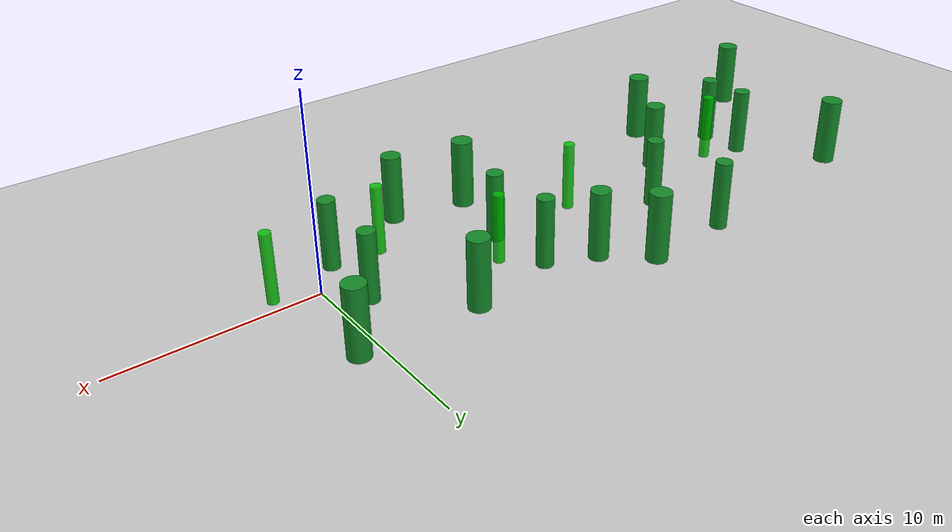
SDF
<sdf version="1.6">
 <world name="long_cylinder_forest">
  <include><uri>model://sun</uri></include>
  <include><uri>model://ground_plane</uri></include>
  <model name="long_forest_cylinder_00">
   <static>true</static>
   <pose>-26.090 1.580 1.800 0 0 0</pose>
   <link name="link">
    <collision name="collision">
     <geometry><cylinder><radius>0.430</radius><length>3.600</length></cylinder></geometry>
    </collision>
    <visual name="visual">
     <geometry><cylinder><radius>0.430</radius><length>3.600</length></cylinder></geometry>
     <material><ambient>0.08 0.55 0.16 0.92</ambient><diffuse>0.08 0.55 0.16 0.92</diffuse></material>
    </visual>
   </link>
  </model>
  <model name="long_forest_cylinder_01">
   <static>true</static>
   <pose>-25.940 -0.650 1.800 0 0 0</pose>
   <link name="link">
    <collision name="collision">
     <geometry><cylinder><radius>0.430</radius><length>3.600</length></cylinder></geometry>
    </collision>
    <visual name="visual">
     <geometry><cylinder><radius>0.430</radius><length>3.600</length></cylinder></geometry>
     <material><ambient>0.08 0.55 0.16 0.92</ambient><diffuse>0.08 0.55 0.16 0.92</diffuse></material>
    </visual>
   </link>
  </model>
  <model name="long_forest_cylinder_02">
   <static>true</static>
   <pose>-18.650 6.900 1.800 0 0 0</pose>
   <link name="link">
    <collision name="collision">
     <geometry><cylinder><radius>0.430</radius><length>3.600</length></cylinder></geometry>
    </collision>
    <visual name="visual">
     <geometry><cylinder><radius>0.430</radius><length>3.600</length></cylinder></geometry>
     <material><ambient>0.08 0.55 0.16 0.92</ambient><diffuse>0.08 0.55 0.16 0.92</diffuse></material>
    </visual>
   </link>
  </model>
  <model name="long_forest_cylinder_03">
   <static>true</static>
   <pose>-17.750 3.130 1.800 0 0 0</pose>
   <link name="link">
    <collision name="collision">
     <geometry><cylinder><radius>0.430</radius><length>3.600</length></cylinder></geometry>
    </collision>
    <visual name="visual">
     <geometry><cylinder><radius>0.430</radius><length>3.600</length></cylinder></geometry>
     <material><ambient>0.08 0.55 0.16 0.92</ambient><diffuse>0.08 0.55 0.16 0.92</diffuse></material>
    </visual>
   </link>
  </model>
  <model name="long_forest_cylinder_04">
   <static>true</static>
   <pose>-9.500 4.290 1.800 0 0 0</pose>
   <link name="link">
    <collision name="collision">
     <geometry><cylinder><radius>0.430</radius><length>3.600</length></cylinder></geometry>
    </collision>
    <visual name="visual">
     <geometry><cylinder><radius>0.430</radius><length>3.600</length></cylinder></geometry>
     <material><ambient>0.08 0.55 0.16 0.92</ambient><diffuse>0.08 0.55 0.16 0.92</diffuse></material>
    </visual>
   </link>
  </model>
  <model name="long_forest_cylinder_05">
   <static>true</static>
   <pose>-9.150 0.900 1.800 0 0 0</pose>
   <link name="link">
    <collision name="collision">
     <geometry><cylinder><radius>0.430</radius><length>3.600</length></cylinder></geometry>
    </collision>
    <visual name="visual">
     <geometry><cylinder><radius>0.430</radius><length>3.600</length></cylinder></geometry>
     <material><ambient>0.08 0.55 0.16 0.92</ambient><diffuse>0.08 0.55 0.16 0.92</diffuse></material>
    </visual>
   </link>
  </model>
  <model name="long_forest_cylinder_06">
   <static>true</static>
   <pose>-1.510 1.770 1.800 0 0 0</pose>
   <link name="link">
    <collision name="collision">
     <geometry><cylinder><radius>0.430</radius><length>3.600</length></cylinder></geometry>
    </collision>
    <visual name="visual">
     <geometry><cylinder><radius>0.430</radius><length>3.600</length></cylinder></geometry>
     <material><ambient>0.08 0.55 0.16 0.92</ambient><diffuse>0.08 0.55 0.16 0.92</diffuse></material>
    </visual>
   </link>
  </model>
  <model name="long_forest_cylinder_07">
   <static>true</static>
   <pose>-1.510 -1.750 1.800 0 0 0</pose>
   <link name="link">
    <collision name="collision">
     <geometry><cylinder><radius>0.430</radius><length>3.600</length></cylinder></geometry>
    </collision>
    <visual name="visual">
     <geometry><cylinder><radius>0.430</radius><length>3.600</length></cylinder></geometry>
     <material><ambient>0.08 0.55 0.16 0.92</ambient><diffuse>0.08 0.55 0.16 0.92</diffuse></material>
    </visual>
   </link>
  </model>
  <model name="long_forest_cylinder_16">
   <static>true</static>
   <pose>-20.850 0.000 1.800 0 0 0</pose>
   <link name="link">
    <collision name="collision">
     <geometry><cylinder><radius>0.500</radius><length>3.600</length></cylinder></geometry>
    </collision>
    <visual name="visual">
     <geometry><cylinder><radius>0.500</radius><length>3.600</length></cylinder></geometry>
     <material><ambient>0.08 0.55 0.16 0.92</ambient><diffuse>0.08 0.55 0.16 0.92</diffuse></material>
    </visual>
   </link>
  </model>
  <model name="long_forest_cylinder_17">
   <static>true</static>
   <pose>-11.950 5.340 1.800 0 0 0</pose>
   <link name="link">
    <collision name="collision">
     <geometry><cylinder><radius>0.500</radius><length>3.600</length></cylinder></geometry>
    </collision>
    <visual name="visual">
     <geometry><cylinder><radius>0.500</radius><length>3.600</length></cylinder></geometry>
     <material><ambient>0.08 0.55 0.16 0.92</ambient><diffuse>0.08 0.55 0.16 0.92</diffuse></material>
    </visual>
   </link>
  </model>
  <model name="long_forest_cylinder_18">
   <static>true</static>
   <pose>-6.230 -3.750 1.800 0 0 0</pose>
   <link name="link">
    <collision name="collision">
     <geometry><cylinder><radius>0.500</radius><length>3.600</length></cylinder></geometry>
    </collision>
    <visual name="visual">
     <geometry><cylinder><radius>0.500</radius><length>3.600</length></cylinder></geometry>
     <material><ambient>0.08 0.55 0.16 0.92</ambient><diffuse>0.08 0.55 0.16 0.92</diffuse></material>
    </visual>
   </link>
  </model>
  <model name="long_forest_cylinder_24">
   <static>true</static>
   <pose>-31.000 -3.800 1.800 0 0 0</pose>
   <link name="link">
    <collision name="collision">
     <geometry><cylinder><radius>0.550</radius><length>3.600</length></cylinder></geometry>
    </collision>
    <visual name="visual">
     <geometry><cylinder><radius>0.550</radius><length>3.600</length></cylinder></geometry>
     <material><ambient>0.08 0.55 0.16 0.92</ambient><diffuse>0.08 0.55 0.16 0.92</diffuse></material>
    </visual>
   </link>
  </model>
  <model name="long_forest_cylinder_25">
   <static>true</static>
   <pose>-29.000 5.500 1.800 0 0 0</pose>
   <link name="link">
    <collision name="collision">
     <geometry><cylinder><radius>0.550</radius><length>3.600</length></cylinder></geometry>
    </collision>
    <visual name="visual">
     <geometry><cylinder><radius>0.550</radius><length>3.600</length></cylinder></geometry>
     <material><ambient>0.08 0.55 0.16 0.92</ambient><diffuse>0.08 0.55 0.16 0.92</diffuse></material>
    </visual>
   </link>
  </model>
  <model name="long_forest_cylinder_26">
   <static>true</static>
   <pose>-23.000 -3.500 1.800 0 0 0</pose>
   <link name="link">
    <collision name="collision">
     <geometry><cylinder><radius>0.550</radius><length>3.600</length></cylinder></geometry>
    </collision>
    <visual name="visual">
     <geometry><cylinder><radius>0.550</radius><length>3.600</length></cylinder></geometry>
     <material><ambient>0.08 0.55 0.16 0.92</ambient><diffuse>0.08 0.55 0.16 0.92</diffuse></material>
    </visual>
   </link>
  </model>
  <model name="long_forest_cylinder_27">
   <static>true</static>
   <pose>-14.000 7.200 1.800 0 0 0</pose>
   <link name="link">
    <collision name="collision">
     <geometry><cylinder><radius>0.550</radius><length>3.600</length></cylinder></geometry>
    </collision>
    <visual name="visual">
     <geometry><cylinder><radius>0.550</radius><length>3.600</length></cylinder></geometry>
     <material><ambient>0.08 0.55 0.16 0.92</ambient><diffuse>0.08 0.55 0.16 0.92</diffuse></material>
    </visual>
   </link>
  </model>
  <model name="long_forest_cylinder_28">
   <static>true</static>
   <pose>-10.000 -3.000 1.800 0 0 0</pose>
   <link name="link">
    <collision name="collision">
     <geometry><cylinder><radius>0.550</radius><length>3.600</length></cylinder></geometry>
    </collision>
    <visual name="visual">
     <geometry><cylinder><radius>0.550</radius><length>3.600</length></cylinder></geometry>
     <material><ambient>0.08 0.55 0.16 0.92</ambient><diffuse>0.08 0.55 0.16 0.92</diffuse></material>
    </visual>
   </link>
  </model>
  <model name="long_forest_cylinder_29">
   <static>true</static>
   <pose>-5.000 5.200 1.800 0 0 0</pose>
   <link name="link">
    <collision name="collision">
     <geometry><cylinder><radius>0.550</radius><length>3.600</length></cylinder></geometry>
    </collision>
    <visual name="visual">
     <geometry><cylinder><radius>0.550</radius><length>3.600</length></cylinder></geometry>
     <material><ambient>0.08 0.55 0.16 0.92</ambient><diffuse>0.08 0.55 0.16 0.92</diffuse></material>
    </visual>
   </link>
  </model>
  <model name="long_forest_cylinder_30">
   <static>true</static>
   <pose>1.000 5.000 1.800 0 0 0</pose>
   <link name="link">
    <collision name="collision">
     <geometry><cylinder><radius>0.550</radius><length>3.600</length></cylinder></geometry>
    </collision>
    <visual name="visual">
     <geometry><cylinder><radius>0.550</radius><length>3.600</length></cylinder></geometry>
     <material><ambient>0.08 0.55 0.16 0.92</ambient><diffuse>0.08 0.55 0.16 0.92</diffuse></material>
    </visual>
   </link>
  </model>
  <model name="long_forest_moving_0">
   <static>false</static>
   <pose>-8.000 2.700 1.800 0 0 0</pose>
   <link name="link">
    <gravity>false</gravity>
    <inertial>
     <mass>1.0</mass>
     <inertia><ixx>0.1</ixx><ixy>0.0</ixy><ixz>0.0</ixz><iyy>0.1</iyy><iyz>0.0</iyz><izz>0.1</izz></inertia>
    </inertial>
    <collision name="collision">
     <geometry><cylinder><radius>0.280</radius><length>3.600</length></cylinder></geometry>
    </collision>
    <visual name="visual">
     <geometry><cylinder><radius>0.280</radius><length>3.600</length></cylinder></geometry>
     <material><ambient>0 0.8 0 0.85</ambient><diffuse>0 0.8 0 0.85</diffuse></material>
    </visual>
   </link>
  </model>
  <model name="long_forest_moving_3">
   <static>false</static>
   <pose>-14.000 0.711 1.800 0 0 0</pose>
   <link name="link">
    <gravity>false</gravity>
    <inertial>
     <mass>1.0</mass>
     <inertia><ixx>0.1</ixx><ixy>0.0</ixy><ixz>0.0</ixz><iyy>0.1</iyy><iyz>0.0</iyz><izz>0.1</izz></inertia>
    </inertial>
    <collision name="collision">
     <geometry><cylinder><radius>0.280</radius><length>3.600</length></cylinder></geometry>
    </collision>
    <visual name="visual">
     <geometry><cylinder><radius>0.280</radius><length>3.600</length></cylinder></geometry>
     <material><ambient>0 0.8 0 0.85</ambient><diffuse>0 0.8 0 0.85</diffuse></material>
    </visual>
   </link>
  </model>
  <model name="long_forest_moving_4">
   <static>false</static>
   <pose>2.000 -0.787 1.800 0 0 0</pose>
   <link name="link">
    <gravity>false</gravity>
    <inertial>
     <mass>1.0</mass>
     <inertia><ixx>0.1</ixx><ixy>0.0</ixy><ixz>0.0</ixz><iyy>0.1</iyy><iyz>0.0</iyz><izz>0.1</izz></inertia>
    </inertial>
    <collision name="collision">
     <geometry><cylinder><radius>0.280</radius><length>3.600</length></cylinder></geometry>
    </collision>
    <visual name="visual">
     <geometry><cylinder><radius>0.280</radius><length>3.600</length></cylinder></geometry>
     <material><ambient>0 0.8 0 0.85</ambient><diffuse>0 0.8 0 0.85</diffuse></material>
    </visual>
   </link>
  </model>
  <model name="long_forest_moving_6">
   <static>false</static>
   <pose>-24.000 1.000 1.800 0 0 0</pose>
   <link name="link">
    <gravity>false</gravity>
    <inertial>
     <mass>1.0</mass>
     <inertia><ixx>0.1</ixx><ixy>0.0</ixy><ixz>0.0</ixz><iyy>0.1</iyy><iyz>0.0</iyz><izz>0.1</izz></inertia>
    </inertial>
    <collision name="collision">
     <geometry><cylinder><radius>0.280</radius><length>3.600</length></cylinder></geometry>
    </collision>
    <visual name="visual">
     <geometry><cylinder><radius>0.280</radius><length>3.600</length></cylinder></geometry>
     <material><ambient>0 0.8 0 0.85</ambient><diffuse>0 0.8 0 0.85</diffuse></material>
    </visual>
   </link>
  </model>
  <model name="long_forest_moving_7">
   <static>false</static>
   <pose>-4.000 -1.500 1.800 0 0 0</pose>
   <link name="link">
    <gravity>false</gravity>
    <inertial>
     <mass>1.0</mass>
     <inertia><ixx>0.1</ixx><ixy>0.0</ixy><ixz>0.0</ixz><iyy>0.1</iyy><iyz>0.0</iyz><izz>0.1</izz></inertia>
    </inertial>
    <collision name="collision">
     <geometry><cylinder><radius>0.280</radius><length>3.600</length></cylinder></geometry>
    </collision>
    <visual name="visual">
     <geometry><cylinder><radius>0.280</radius><length>3.600</length></cylinder></geometry>
     <material><ambient>0 0.8 0 0.85</ambient><diffuse>0 0.8 0 0.85</diffuse></material>
    </visual>
   </link>
  </model>
 </world>
</sdf>
